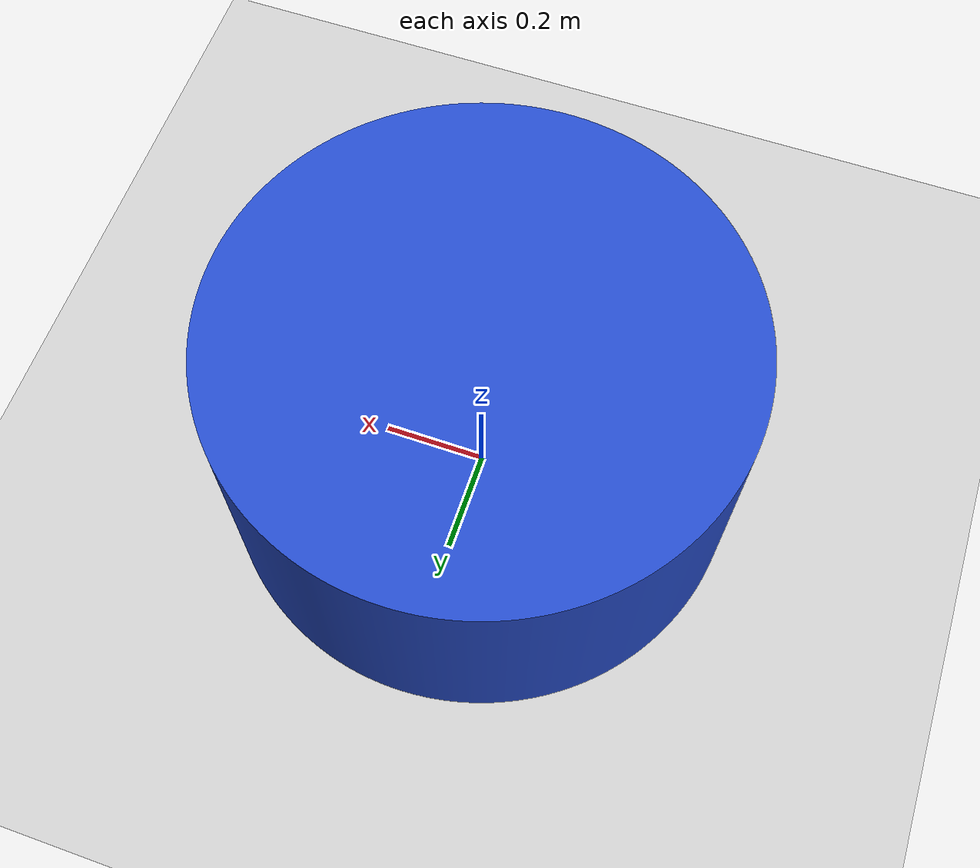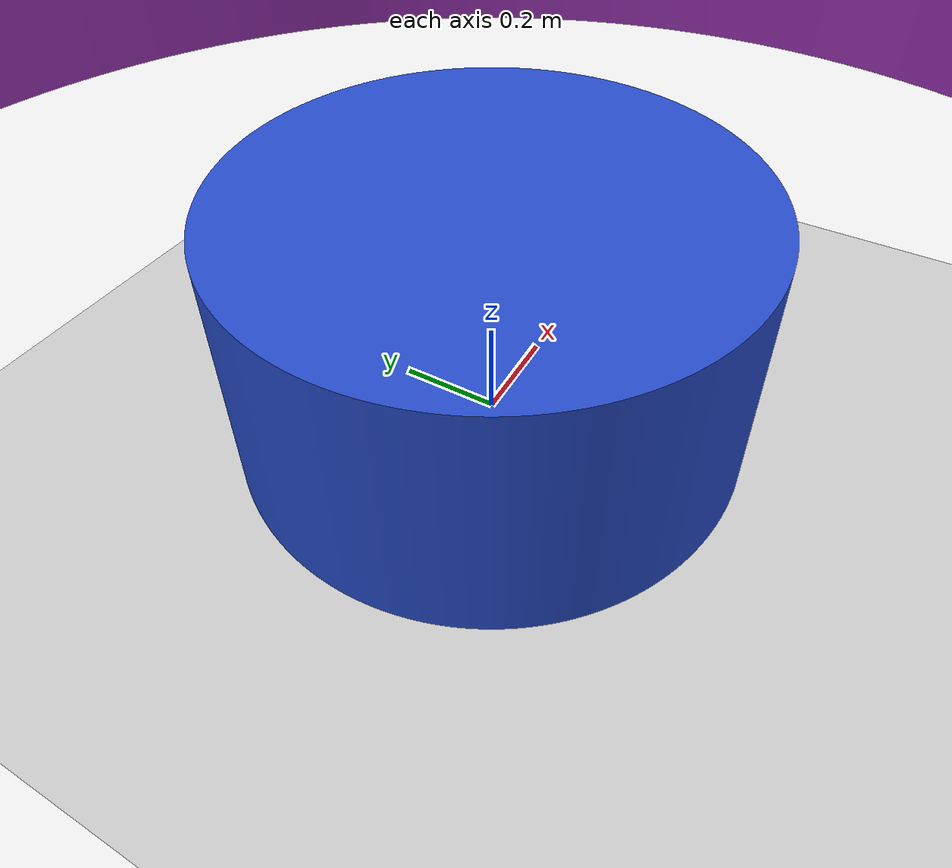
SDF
<sdf version='1.4'>
  <world name='default'>
    <!-- A global light source -->
    <include>
      <uri>model://sun</uri>
    </include>

    <!-- A ground plane -->
    <include>
      <uri>model://ground_plane</uri>
    </include>

    <physics type="ode">
      <real_time_update_rate>1000.0</real_time_update_rate>
      <max_step_size>0.001</max_step_size>
      <real_time_factor>1</real_time_factor>
      <ode>
        <solver>
          <type>quick</type>
          <iters>150</iters>
          <precon_iters>0</precon_iters>
          <sor>1.400000</sor>
          <use_dynamic_moi_rescaling>1</use_dynamic_moi_rescaling>
        </solver>
        <constraints>
          <cfm>0.00001</cfm>
          <erp>0.2</erp>
          <contact_max_correcting_vel>20.000000</contact_max_correcting_vel>
          <contact_surface_layer>0.01000</contact_surface_layer>
        </constraints>
      </ode>
    </physics>

    <include>
      <uri>model://Cylinder</uri>
    </include>

    <include>
      <uri>model://Cylinder_hollow</uri>
    </include>

    <scene>
      <ambient>0.4 0.4 0.4 1</ambient>
      <background>0.7 0.7 0.7 1</background>
      <shadows>true</shadows>
    </scene>

    <gui fullscreen='0'>
      <camera name='user_camera'>
        <pose>0.8 0.0 12.0 0 1.5708 0</pose>
        <view_controller>orbit</view_controller>
      </camera>
    </gui>
  </world>
</sdf>

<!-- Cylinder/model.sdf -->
<sdf version='1.4'>
    <!-- Draw Circle -->
    <model name='Cylinder'>
      <static>1</static>
	<link name='symbol'>

        <!-- Draw Wall -->
        <collision name='body'>
        <pose>0 0 0 0 0 0</pose>
        <geometry>
          <mesh>
            <uri>model://Cylinder/meshes/cylinder.dae</uri>
            <scale>1 1 1</scale>
          </mesh>
        </geometry>
        <max_contacts>10</max_contacts>
        <surface>
          <bounce/>
          <friction>
            <ode/>
          </friction>
          <contact>
            <ode/>
          </contact>
        </surface>
      </collision>

      <visual name='body'>
        <pose>0 0 0 0 0 0</pose>
        <geometry>
          <mesh>
            <uri>model://Cylinder/meshes/cylinder.dae</uri>
            <scale>1 1 1</scale>
          </mesh>
        </geometry>
        <material>
          <script>
            <uri>file://media/materials/scripts/gazebo.material</uri>
            <name>Gazebo/Blue</name>
          </script>
        </material>
      </visual>
    </link>
  </model>
</sdf>

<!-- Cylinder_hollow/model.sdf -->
<sdf version='1.4'>
    <model name='Cylinder_hollow'>
      <static>1</static>
	<link name='symbol'>
        <!-- Draw Wall -->
        <collision name='body'>
        <pose>0 0 0 0 0 0</pose>
        <geometry>
          <mesh>
            <uri>model://Cylinder_hollow/meshes/hollow_cylinder.dae</uri>
            <scale>1 1 1</scale>
          </mesh>
        </geometry>
        <max_contacts>10</max_contacts>
        <surface>
          <bounce/>
          <friction>
            <ode/>
          </friction>
          <contact>
            <ode/>
          </contact>
        </surface>
      </collision>

      <visual name='body'>
        <pose>0 0 0 0 0 0</pose>
        <geometry>
          <mesh>
            <uri>model://Cylinder_hollow/meshes/hollow_cylinder.dae</uri>
            <scale>1 1 1</scale>
          </mesh>
        </geometry>
        <material>
          <script>
            <uri>file://media/materials/scripts/gazebo.material</uri>
            <name>Gazebo/Purple</name>
          </script>
        </material>
      </visual>
    </link>
  </model>
</sdf>
